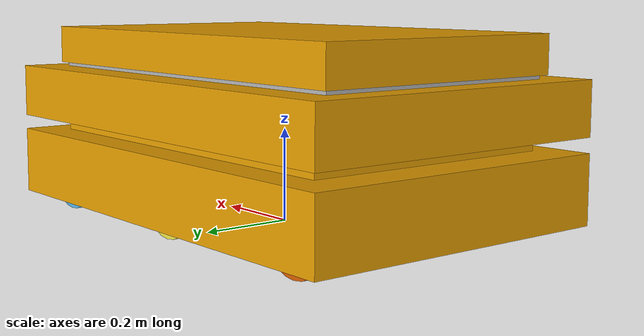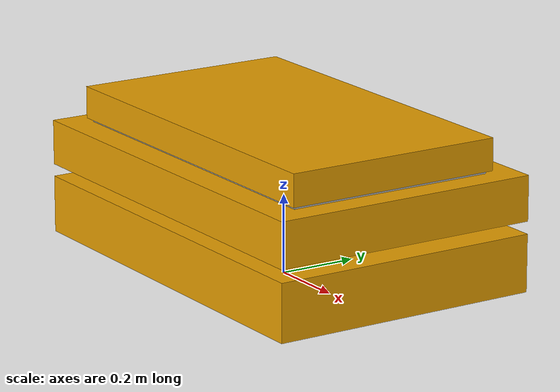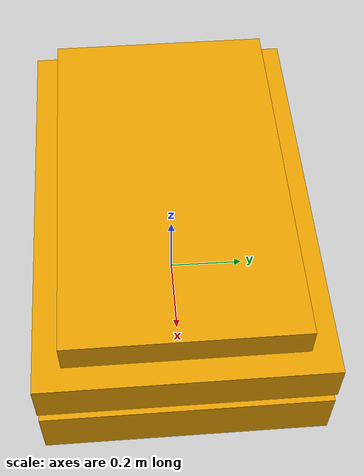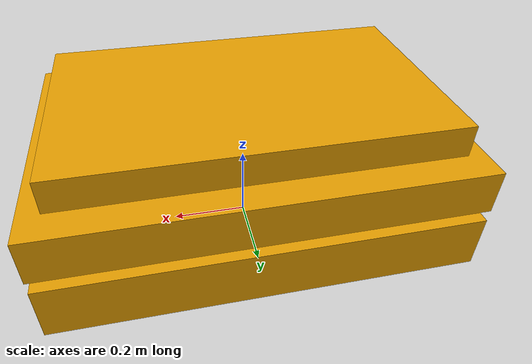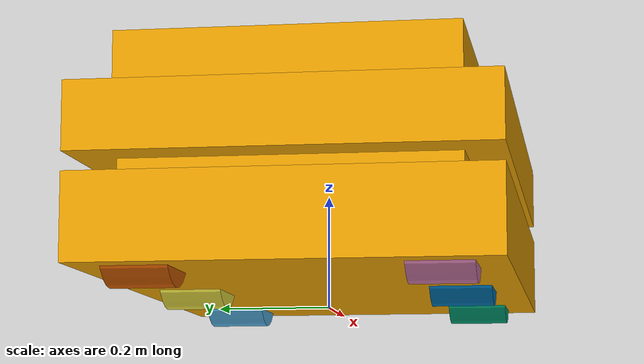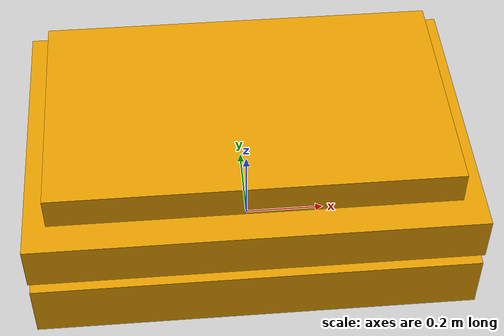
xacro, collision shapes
<?xml version="1.0"?>
<robot xmlns:xacro="http://www.ros.org/wiki/xacro" name="OTTO600">

 <xacro:property name="base_link_length" value="1.05" />
  <xacro:property name="base_link_width" value="0.697" />

  <xacro:property name="wheel_axis_front" value="0.406" />
  <xacro:property name="wheel_axis_rear" value="-0.406" />
  <xacro:property name="wheel_track" value="0.242" />

  <xacro:property name="wheel_radius" value="0.0875" />
  <xacro:property name="wheel_length" value="0.11" />
  <xacro:property name="wheel_z_position" value="0.0877" />

  <xacro:property name="camera_height" value="0.115" />
  <xacro:property name="camera_center_offset" value="0.05" />

  <xacro:property name="lidar_height" value="0.2" />

  <link name="base_link">
    <inertial>
      <origin xyz="0. 0. 0." />
      <mass value="238" />
      <inertia ixx="11.7493" ixy="0." ixz="0." iyy="23.8972" iyz="0." izz="31.5846"/>
    </inertial>
    <visual>
      <origin rpy="0. 0. ${pi}" xyz="0. 0. 0."/>
      <geometry>
        <mesh filename="../Meshes/OTTO600_bodylink.stl" scale="1.0 1.0 1.0" />
      </geometry>
    </visual>
    <!-- bottom collider box -->
    <collision>
      <origin rpy="0. 0. ${pi / 2}" xyz="0. 0. 0.264"/>
      <geometry>
        <box size="${base_link_width} ${base_link_length} 0.114" />
      </geometry>
    </collision>
    <!-- center collider box -->
    <collision>
      <origin rpy="0. 0. ${pi / 2}" xyz="0. 0. 0.192"/>
      <geometry>
        <box size="0.56 0.88 0.03" />
      </geometry>
    </collision>
    <!-- top collider box -->
    <collision>
      <origin rpy="0. 0. ${pi / 2}" xyz="0. 0. 0.103"/>
      <geometry>
        <box size="${base_link_width} ${base_link_length} 0.145" />
      </geometry>
    </collision>
  </link>

  <link name="wheel_FL">
    <inertial>
      <origin xyz="0. 0. 0." />
      <mass value="2" />
      <inertia ixx="0.00584479" ixy="0." ixz="0." iyy="0.00765625" iyz="0." izz="0.00584479"/>
    </inertial>
    <visual>
      <origin rpy="0. 0. 0." xyz="0. 0. 0."/>
      <geometry>
        <mesh filename="../Meshes/OTTO600_wheel.stl" scale="1.0 1.0 1.0" />
      </geometry>
    </visual>
    <collision>
      <origin rpy="${pi/2} ${pi/2} 0." xyz="0. 0. 0."/>
      <geometry>
        <cylinder radius="${wheel_radius}" length="${wheel_length}"/>
      </geometry>
    </collision>
  </link>
  <joint name="wheel_FL_joint" type="continuous">
    <parent link="base_link" />
    <child link="wheel_FL" />
    <axis xyz="0. 1. 0." />
    <origin rpy="0. 0. 0." xyz="${wheel_axis_front} ${wheel_track} ${wheel_z_position}" />
  </joint>

  <link name="wheel_FR">
    <inertial>
      <origin xyz="0. 0. 0." />
      <mass value="2" />
      <inertia ixx="0.00584479" ixy="0." ixz="0." iyy="0.00765625" iyz="0." izz="0.00584479"/>
    </inertial>
    <visual>
      <origin rpy="0. 0. 0." xyz="0. 0. 0."/>
      <geometry>
        <mesh filename="../Meshes/OTTO600_wheel.stl" scale="1.0 1.0 1.0" />
      </geometry>
    </visual>
    <collision>
      <origin rpy="${pi/2} ${pi/2} 0." xyz="0. 0. 0."/>
      <geometry>
        <cylinder radius="${wheel_radius}" length="${wheel_length}"/>
      </geometry>
    </collision>
  </link>
  <joint name="wheel_FR_joint" type="continuous">
    <parent link="base_link" />
    <child link="wheel_FR" />
    <axis xyz="0. 1. 0." />
    <origin rpy="0. 0. 0." xyz="${wheel_axis_front} ${-wheel_track} ${wheel_z_position}" />
  </joint>

  <link name="wheel_CL">
    <inertial>
      <origin xyz="0. 0. 0." />
      <mass value="2" />
      <inertia ixx="0.00584479" ixy="0." ixz="0." iyy="0.00765625" iyz="0." izz="0.00584479"/>
    </inertial>
    <visual>
      <origin rpy="0. 0. 0." xyz="0. 0. 0."/>
      <geometry>
        <mesh filename="../Meshes/OTTO600_wheel.stl" scale="1.0 1.0 1.0" />
      </geometry>
    </visual>
    <collision>
      <origin rpy="${pi/2} ${pi/2} 0." xyz="0. 0. 0."/>
      <geometry>
        <cylinder radius="${wheel_radius}" length="${wheel_length}"/>
      </geometry>
    </collision>
  </link>
  <joint name="wheel_CL_joint" type="continuous">
    <parent link="base_link" />
    <child link="wheel_CL" />
    <axis xyz="0. 1. 0." />
    <origin rpy="0. 0. 0." xyz="0. ${wheel_track} ${wheel_z_position}" />
  </joint>

  <link name="wheel_CR">
    <inertial>
      <origin xyz="0. 0. 0." />
      <mass value="2" />
      <inertia ixx="0.00584479" ixy="0." ixz="0." iyy="0.00765625" iyz="0." izz="0.00584479"/>
    </inertial>
    <visual>
      <origin rpy="0. 0. 0." xyz="0. 0. 0."/>
      <geometry>
        <mesh filename="../Meshes/OTTO600_wheel.stl" scale="1.0 1.0 1.0" />
      </geometry>
    </visual>
    <collision>
      <origin rpy="${pi/2} ${pi/2} 0." xyz="0. 0. 0."/>
      <geometry>
        <cylinder radius="${wheel_radius}" length="${wheel_length}"/>
      </geometry>
    </collision>
  </link>
  <joint name="wheel_CR_joint" type="continuous">
    <parent link="base_link" />
    <child link="wheel_CR" />
    <axis xyz="0. 1. 0." />
    <origin rpy="0. 0. 0." xyz="0. ${-wheel_track} ${wheel_z_position}" />
  </joint>

  <link name="wheel_RL">
    <inertial>
      <origin xyz="0. 0. 0." />
      <mass value="2" />
      <inertia ixx="0.00584479" ixy="0." ixz="0." iyy="0.00765625" iyz="0." izz="0.00584479"/>
    </inertial>
    <visual>
      <origin rpy="0. 0. 0." xyz="0. 0. 0."/>
      <geometry>
        <mesh filename="../Meshes/OTTO600_wheel.stl" scale="1.0 1.0 1.0" />
      </geometry>
    </visual>
    <collision>
      <origin rpy="${pi/2} ${pi/2} 0." xyz="0. 0. 0."/>
      <geometry>
        <cylinder radius="${wheel_radius}" length="${wheel_length}"/>
      </geometry>
    </collision>
  </link>
  <joint name="wheel_RL_joint" type="continuous">
    <parent link="base_link" />
    <child link="wheel_RL" />
    <axis xyz="0. 1. 0." />
    <origin rpy="0. 0. 0." xyz="${wheel_axis_rear} ${wheel_track} ${wheel_z_position}" />
  </joint>

  <link name="wheel_RR">
    <inertial>
      <origin xyz="0. 0. 0." />
      <mass value="2" />
      <inertia ixx="0.00584479" ixy="0." ixz="0." iyy="0.00765625" iyz="0." izz="0.00584479"/>
    </inertial>
    <visual>
      <origin rpy="0. 0. 0." xyz="0. 0. 0."/>
      <geometry>
        <mesh filename="../Meshes/OTTO600_wheel.stl" scale="1.0 1.0 1.0" />
      </geometry>
    </visual>
    <collision>
      <origin rpy="${pi/2} ${pi/2} 0." xyz="0. 0. 0."/>
      <geometry>
        <cylinder radius="${wheel_radius}" length="${wheel_length}"/>
      </geometry>
    </collision>
  </link>
  <joint name="wheel_RR_joint" type="continuous">
    <parent link="base_link" />
    <child link="wheel_RR" />
    <axis xyz="0. 1. 0." />
    <origin rpy="0. 0. 0." xyz="${wheel_axis_rear} ${-wheel_track} ${wheel_z_position}" />
  </joint>

  <link name="platform_base">
    <inertial>
      <origin xyz="0. 0. 0." />
      <mass value="50" />
      <inertia ixx="1.25124" ixy="0." ixz="0." iyy="3.54285" iyz="0." izz="4.73926"/>
    </inertial>
    <visual>
      <origin rpy="0. 0. 0." xyz="0. 0. 0.343608"/>
      <geometry>
        <mesh filename="../Meshes/OTTO600_platform_base.stl" scale="1.0 1.0 1.0" />
      </geometry>
    </visual>
    <collision>
      <origin rpy="0. 0. 0." xyz="0. 0. 0.343608"/>
      <geometry>
        <box size="0.918534 0.541957 0.08112" />
      </geometry>
    </collision>
  </link>
  <joint name="platform_base_joint" type="fixed">
    <parent link="base_link" />
    <child link="platform_base" />
    <origin rpy="0. 0. 0." xyz="0. 0. 0." />
  </joint>

  <link name="platform_upper">
    <inertial>
      <origin xyz="0. 0. 0." />
      <mass value="50" />
      <inertia ixx="1.35179" ixy="0." ixz="0." iyy="3.73262" iyz="0." izz="5.02958"/>
    </inertial>
    <visual>
      <origin rpy="0. 0. 0." xyz="0. 0. 0.37"/>
      <geometry>
        <mesh filename="../Meshes/OTTO600_platform_upper.stl" scale="1.0 1.0 1.0" />
      </geometry>
    </visual>
    <collision>
      <origin rpy="0. 0. 0." xyz="0. 0. 0.37"/>
      <geometry>
        <box size="0.9430 0.563781 0.081115" />
      </geometry>
    </collision>
  </link>
  <joint name="platform_upper_joint" type="prismatic">
    <parent link="platform_base" />
    <child link="platform_upper" />
    <axis xyz="0. 0. 1." />
    <origin rpy="0. 0. 0." xyz="0. 0. 0." />
    <limit lower="0.0" upper="0.045" effort="0.0" velocity="0.0"/>
  </joint>

  <link name="lidar_F" />
  <joint name="lidar_F_joint" type="fixed">
    <parent link="base_link" />
    <child link="lidar_F" />
    <origin rpy="0. 0. 0." xyz="${base_link_length / 2} ${base_link_width / 2} ${lidar_height}" />
  </joint>

  <link name="lidar_R" />
  <joint name="lidar_R_joint" type="fixed">
    <parent link="base_link" />
    <child link="lidar_R" />
    <origin rpy="0. 0. 0." xyz="${-base_link_length / 2} ${-base_link_width / 2} ${lidar_height}" />
  </joint>

  <link name="camera_FL" />
  <joint name="camera_FL_joint" type="fixed">
    <parent link="base_link" />
    <child link="camera_FL" />
    <origin rpy="0. 0. 0." xyz="${base_link_length / 2} ${camera_center_offset} ${camera_height}" />
  </joint>

  <link name="camera_FR" />
  <joint name="camera_FR_joint" type="fixed">
    <parent link="base_link" />
    <child link="camera_FR" />
    <origin rpy="0. 0. 0." xyz="${base_link_length / 2} ${-camera_center_offset} ${camera_height}" />
  </joint>

</robot>
